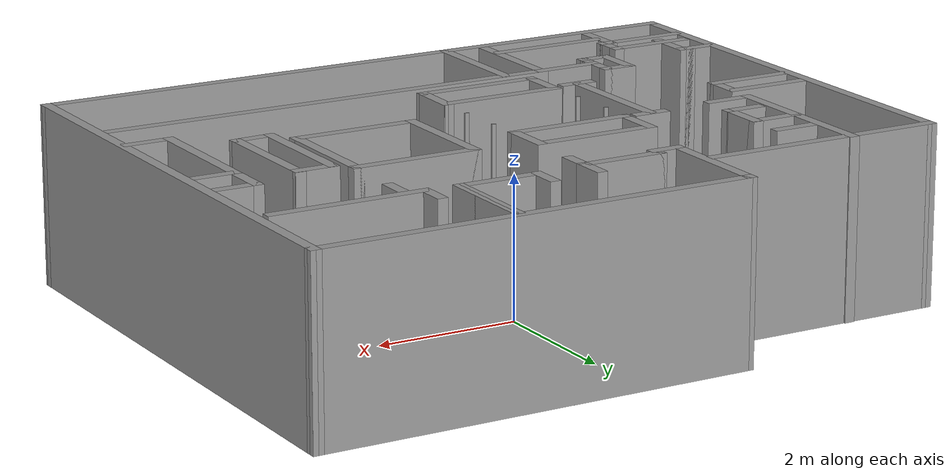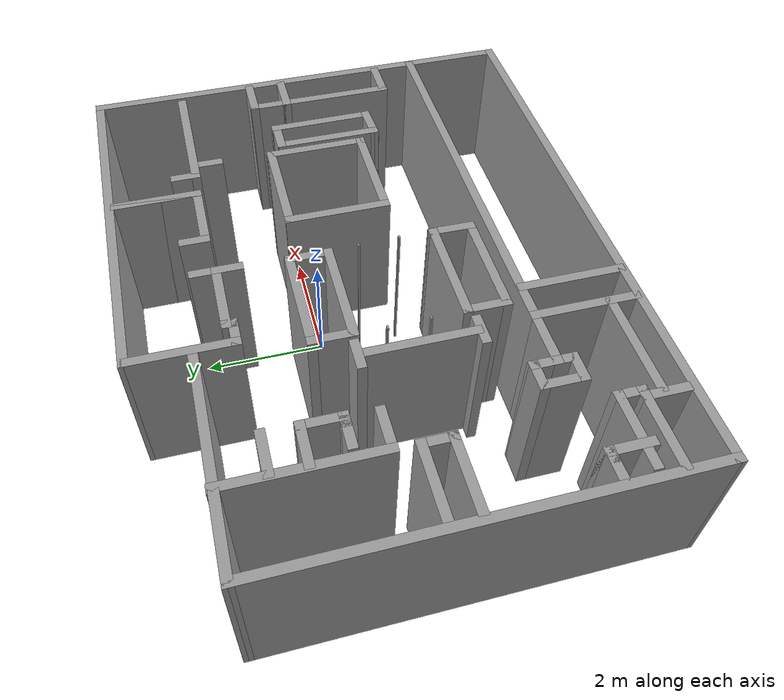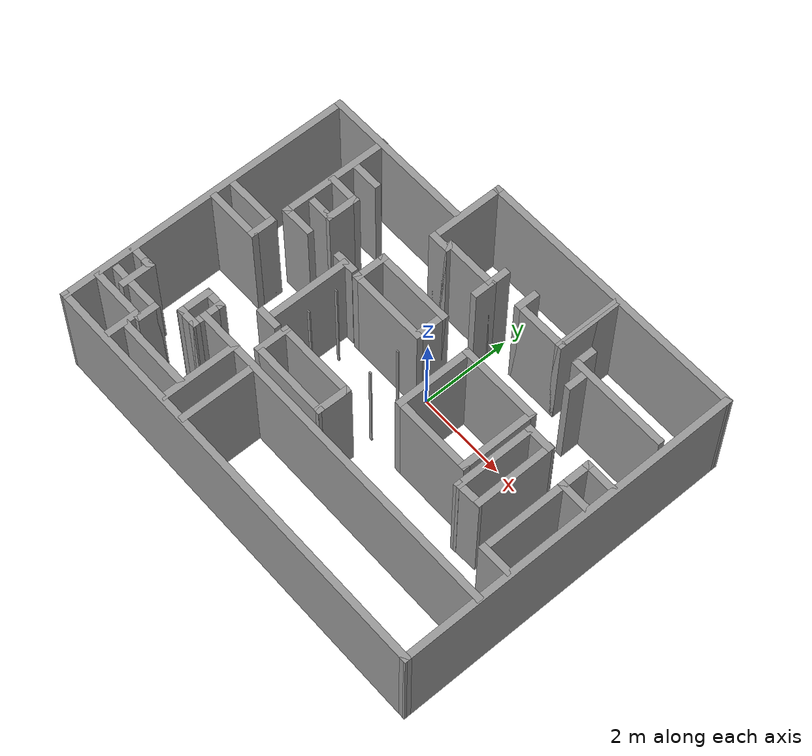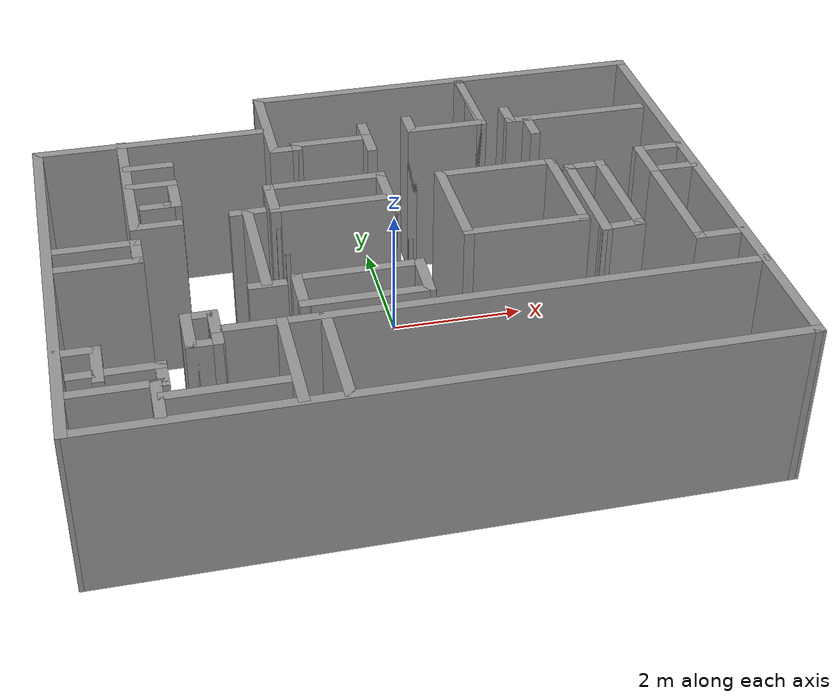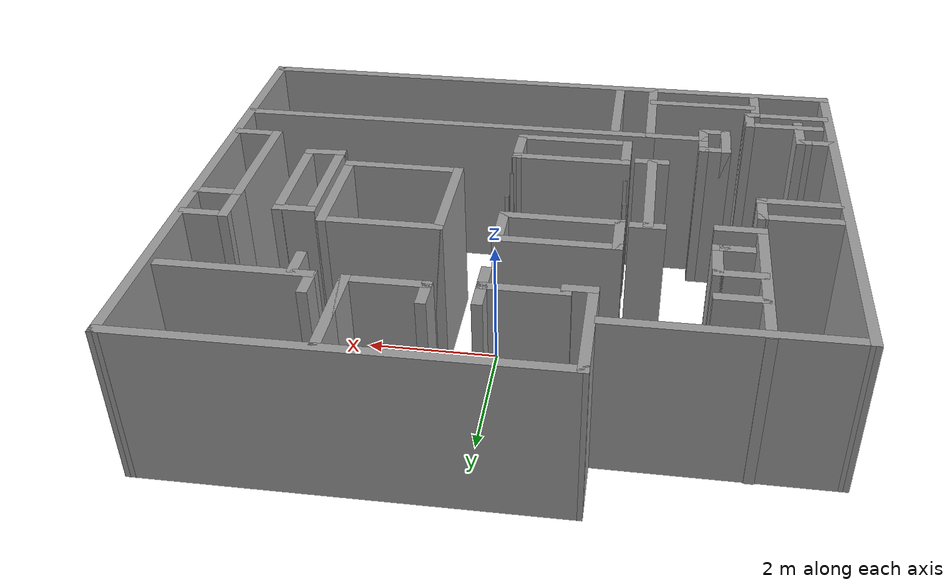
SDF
<?xml version='1.0'?>
<sdf version='1.6'>
  <model name='map'>
    <pose frame=''>-0.237865 -0.686556 0 0 -0 0</pose>
    <link name='Wall_100'>
      <collision name='Wall_100_Collision'>
        <geometry>
          <box>
            <size>0.75 0.15 2.5</size>
          </box>
        </geometry>
        <pose frame=''>0 0 1.25 0 -0 0</pose>
      </collision>
      <visual name='Wall_100_Visual'>
        <pose frame=''>0 0 1.25 0 -0 0</pose>
        <geometry>
          <box>
            <size>0.75 0.15 2.5</size>
          </box>
        </geometry>
        <material>
          <script>
            <uri>file://media/materials/scripts/gazebo.material</uri>
            <name>Gazebo/Grey</name>
          </script>
          <ambient>1 1 1 1</ambient>
        </material>
        <meta>
          <layer>0</layer>
        </meta>
      </visual>
      <pose frame=''>-4.23906 -2.52874 0 0 -0 -1.5708</pose>
    </link>
    <link name='Wall_108'>
      <collision name='Wall_108_Collision'>
        <geometry>
          <box>
            <size>0.5 0.15 2.5</size>
          </box>
        </geometry>
        <pose frame=''>0 0 1.25 0 -0 0</pose>
      </collision>
      <visual name='Wall_108_Visual'>
        <pose frame=''>0 0 1.25 0 -0 0</pose>
        <geometry>
          <box>
            <size>0.5 0.15 2.5</size>
          </box>
        </geometry>
        <material>
          <script>
            <uri>file://media/materials/scripts/gazebo.material</uri>
            <name>Gazebo/Grey</name>
          </script>
          <ambient>1 1 1 1</ambient>
        </material>
        <meta>
          <layer>0</layer>
        </meta>
      </visual>
      <pose frame=''>-3.15967 0.972526 0 0 -0 0</pose>
    </link>
    <link name='Wall_109'>
      <collision name='Wall_109_Collision'>
        <geometry>
          <box>
            <size>0.25 0.15 2.5</size>
          </box>
        </geometry>
        <pose frame=''>0 0 1.25 0 -0 0</pose>
      </collision>
      <visual name='Wall_109_Visual'>
        <pose frame=''>0 0 1.25 0 -0 0</pose>
        <geometry>
          <box>
            <size>0.25 0.15 2.5</size>
          </box>
        </geometry>
        <material>
          <script>
            <uri>file://media/materials/scripts/gazebo.material</uri>
            <name>Gazebo/Grey</name>
          </script>
          <ambient>1 1 1 1</ambient>
        </material>
        <meta>
          <layer>0</layer>
        </meta>
      </visual>
      <pose frame=''>-2.93467 0.972526 0 0 -0 0</pose>
    </link>
    <link name='Wall_110'>
      <collision name='Wall_110_Collision'>
        <geometry>
          <box>
            <size>0.75 0.15 2.5</size>
          </box>
        </geometry>
        <pose frame=''>0 0 1.25 0 -0 0</pose>
      </collision>
      <visual name='Wall_110_Visual'>
        <pose frame=''>0 0 1.25 0 -0 0</pose>
        <geometry>
          <box>
            <size>0.75 0.15 2.5</size>
          </box>
        </geometry>
        <material>
          <script>
            <uri>file://media/materials/scripts/gazebo.material</uri>
            <name>Gazebo/Grey</name>
          </script>
          <ambient>1 1 1 1</ambient>
        </material>
        <meta>
          <layer>0</layer>
        </meta>
      </visual>
      <pose frame=''>-2.88467 1.27253 0 0 -0 1.5708</pose>
    </link>
    <link name='Wall_111'>
      <collision name='Wall_111_Collision'>
        <geometry>
          <box>
            <size>0.75 0.15 2.5</size>
          </box>
        </geometry>
        <pose frame=''>0 0 1.25 0 -0 0</pose>
      </collision>
      <visual name='Wall_111_Visual'>
        <pose frame=''>0 0 1.25 0 -0 0</pose>
        <geometry>
          <box>
            <size>0.75 0.15 2.5</size>
          </box>
        </geometry>
        <material>
          <script>
            <uri>file://media/materials/scripts/gazebo.material</uri>
            <name>Gazebo/Grey</name>
          </script>
          <ambient>1 1 1 1</ambient>
        </material>
        <meta>
          <layer>0</layer>
        </meta>
      </visual>
      <pose frame=''>-3.18467 1.57253 0 0 -0 3.14159</pose>
    </link>
    <link name='Wall_115'>
      <collision name='Wall_115_Collision'>
        <geometry>
          <box>
            <size>0.5 0.15 2.5</size>
          </box>
        </geometry>
        <pose frame=''>0 0 1.25 0 -0 0</pose>
      </collision>
      <visual name='Wall_115_Visual'>
        <pose frame=''>0 0 1.25 0 -0 0</pose>
        <geometry>
          <box>
            <size>0.5 0.15 2.5</size>
          </box>
        </geometry>
        <material>
          <script>
            <uri>file://media/materials/scripts/gazebo.material</uri>
            <name>Gazebo/Grey</name>
          </script>
          <ambient>1 1 1 1</ambient>
        </material>
        <meta>
          <layer>0</layer>
        </meta>
      </visual>
      <pose frame=''>0.884147 2.51846 0 0 -0 1.5708</pose>
    </link>
    <link name='Wall_117'>
      <collision name='Wall_117_Collision'>
        <geometry>
          <box>
            <size>1.5 0.15 2.5</size>
          </box>
        </geometry>
        <pose frame=''>0 0 1.25 0 -0 0</pose>
      </collision>
      <visual name='Wall_117_Visual'>
        <pose frame=''>0 0 1.25 0 -0 0</pose>
        <geometry>
          <box>
            <size>1.5 0.15 2.5</size>
          </box>
        </geometry>
        <material>
          <script>
            <uri>file://media/materials/scripts/gazebo.material</uri>
            <name>Gazebo/Grey</name>
          </script>
          <ambient>1 1 1 1</ambient>
        </material>
        <meta>
          <layer>0</layer>
        </meta>
      </visual>
      <pose frame=''>1.98415 3.01846 0 0 -0 -1.5708</pose>
    </link>
    <link name='Wall_120'>
      <collision name='Wall_120_Collision'>
        <geometry>
          <box>
            <size>2.25 0.15 2.5</size>
          </box>
        </geometry>
        <pose frame=''>0 0 1.25 0 -0 0</pose>
      </collision>
      <visual name='Wall_120_Visual'>
        <pose frame=''>0 0 1.25 0 -0 0</pose>
        <geometry>
          <box>
            <size>2.25 0.15 2.5</size>
          </box>
        </geometry>
        <material>
          <script>
            <uri>file://media/materials/scripts/gazebo.material</uri>
            <name>Gazebo/Grey</name>
          </script>
          <ambient>1 1 1 1</ambient>
        </material>
        <meta>
          <layer>0</layer>
        </meta>
      </visual>
      <pose frame=''>3.50223 2.30932 0 0 -0 0</pose>
    </link>
    <link name='Wall_124'>
      <collision name='Wall_124_Collision'>
        <geometry>
          <box>
            <size>0.5 0.15 2.5</size>
          </box>
        </geometry>
        <pose frame=''>0 0 1.25 0 -0 0</pose>
      </collision>
      <visual name='Wall_124_Visual'>
        <pose frame=''>0 0 1.25 0 -0 0</pose>
        <geometry>
          <box>
            <size>0.5 0.15 2.5</size>
          </box>
        </geometry>
        <material>
          <script>
            <uri>file://media/materials/scripts/gazebo.material</uri>
            <name>Gazebo/Grey</name>
          </script>
          <ambient>1 1 1 1</ambient>
        </material>
        <meta>
          <layer>0</layer>
        </meta>
      </visual>
      <pose frame=''>2.71607 2.06217 0 0 -0 1.5708</pose>
    </link>
    <link name='Wall_126'>
      <collision name='Wall_126_Collision'>
        <geometry>
          <box>
            <size>0.75 0.15 2.5</size>
          </box>
        </geometry>
        <pose frame=''>0 0 1.25 0 -0 0</pose>
      </collision>
      <visual name='Wall_126_Visual'>
        <pose frame=''>0 0 1.25 0 -0 0</pose>
        <geometry>
          <box>
            <size>0.75 0.15 2.5</size>
          </box>
        </geometry>
        <material>
          <script>
            <uri>file://media/materials/scripts/gazebo.material</uri>
            <name>Gazebo/Grey</name>
          </script>
          <ambient>1 1 1 1</ambient>
        </material>
        <meta>
          <layer>0</layer>
        </meta>
      </visual>
      <pose frame=''>4.40367 1.02529 0 0 -0 3.14159</pose>
    </link>
    <link name='Wall_127'>
      <collision name='Wall_127_Collision'>
        <geometry>
          <box>
            <size>0.75 0.15 2.5</size>
          </box>
        </geometry>
        <pose frame=''>0 0 1.25 0 -0 0</pose>
      </collision>
      <visual name='Wall_127_Visual'>
        <pose frame=''>0 0 1.25 0 -0 0</pose>
        <geometry>
          <box>
            <size>0.75 0.15 2.5</size>
          </box>
        </geometry>
        <material>
          <script>
            <uri>file://media/materials/scripts/gazebo.material</uri>
            <name>Gazebo/Grey</name>
          </script>
          <ambient>1 1 1 1</ambient>
        </material>
        <meta>
          <layer>0</layer>
        </meta>
      </visual>
      <pose frame=''>4.10367 0.725294 0 0 -0 -1.5708</pose>
    </link>
    <link name='Wall_128'>
      <collision name='Wall_128_Collision'>
        <geometry>
          <box>
            <size>0.75 0.15 2.5</size>
          </box>
        </geometry>
        <pose frame=''>0 0 1.25 0 -0 0</pose>
      </collision>
      <visual name='Wall_128_Visual'>
        <pose frame=''>0 0 1.25 0 -0 0</pose>
        <geometry>
          <box>
            <size>0.75 0.15 2.5</size>
          </box>
        </geometry>
        <material>
          <script>
            <uri>file://media/materials/scripts/gazebo.material</uri>
            <name>Gazebo/Grey</name>
          </script>
          <ambient>1 1 1 1</ambient>
        </material>
        <meta>
          <layer>0</layer>
        </meta>
      </visual>
      <pose frame=''>4.40367 0.425294 0 0 -0 0</pose>
    </link>
    <link name='Wall_130'>
      <collision name='Wall_130_Collision'>
        <geometry>
          <box>
            <size>2 0.15 2.5</size>
          </box>
        </geometry>
        <pose frame=''>0 0 1.25 0 -0 0</pose>
      </collision>
      <visual name='Wall_130_Visual'>
        <pose frame=''>0 0 1.25 0 -0 0</pose>
        <geometry>
          <box>
            <size>2 0.15 2.5</size>
          </box>
        </geometry>
        <material>
          <script>
            <uri>file://media/materials/scripts/gazebo.material</uri>
            <name>Gazebo/Grey</name>
          </script>
          <ambient>1 1 1 1</ambient>
        </material>
        <meta>
          <layer>0</layer>
        </meta>
      </visual>
      <pose frame=''>4.10367 -0.499706 0 0 -0 -1.5708</pose>
    </link>
    <link name='Wall_131'>
      <collision name='Wall_131_Collision'>
        <geometry>
          <box>
            <size>0.75 0.15 2.5</size>
          </box>
        </geometry>
        <pose frame=''>0 0 1.25 0 -0 0</pose>
      </collision>
      <visual name='Wall_131_Visual'>
        <pose frame=''>0 0 1.25 0 -0 0</pose>
        <geometry>
          <box>
            <size>0.75 0.15 2.5</size>
          </box>
        </geometry>
        <material>
          <script>
            <uri>file://media/materials/scripts/gazebo.material</uri>
            <name>Gazebo/Grey</name>
          </script>
          <ambient>1 1 1 1</ambient>
        </material>
        <meta>
          <layer>0</layer>
        </meta>
      </visual>
      <pose frame=''>4.40367 -1.42471 0 0 -0 0</pose>
    </link>
    <link name='Wall_148'>
      <collision name='Wall_148_Collision'>
        <geometry>
          <box>
            <size>1.9 0.15 2.5</size>
          </box>
        </geometry>
        <pose frame=''>0 0 1.25 0 -0 0</pose>
      </collision>
      <visual name='Wall_148_Visual'>
        <pose frame=''>0 0 1.25 0 -0 0</pose>
        <geometry>
          <box>
            <size>1.9 0.15 2.5</size>
          </box>
        </geometry>
        <material>
          <script>
            <uri>file://media/materials/scripts/gazebo.material</uri>
            <name>Gazebo/Grey</name>
          </script>
          <ambient>1 1 1 1</ambient>
        </material>
        <meta>
          <layer>0</layer>
        </meta>
      </visual>
      <pose frame=''>-1.92478 -0.363959 0 0 -0 -1.5708</pose>
    </link>
    <link name='Wall_150'>
      <collision name='Wall_150_Collision'>
        <geometry>
          <box>
            <size>0.53 0.15 2.5</size>
          </box>
        </geometry>
        <pose frame=''>0 0 1.25 0 -0 0</pose>
      </collision>
      <visual name='Wall_150_Visual'>
        <pose frame=''>0 0 1.25 0 -0 0</pose>
        <geometry>
          <box>
            <size>0.53 0.15 2.5</size>
          </box>
        </geometry>
        <material>
          <script>
            <uri>file://media/materials/scripts/gazebo.material</uri>
            <name>Gazebo/Grey</name>
          </script>
          <ambient>1 1 1 1</ambient>
        </material>
        <meta>
          <layer>0</layer>
        </meta>
      </visual>
      <pose frame=''>-1.91983 0.545736 0 0 -0 0</pose>
    </link>
    <link name='Wall_152'>
      <collision name='Wall_152_Collision'>
        <geometry>
          <box>
            <size>0.53 0.15 2.5</size>
          </box>
        </geometry>
        <pose frame=''>0 0 1.25 0 -0 0</pose>
      </collision>
      <visual name='Wall_152_Visual'>
        <pose frame=''>0 0 1.25 0 -0 0</pose>
        <geometry>
          <box>
            <size>0.53 0.15 2.5</size>
          </box>
        </geometry>
        <material>
          <script>
            <uri>file://media/materials/scripts/gazebo.material</uri>
            <name>Gazebo/Grey</name>
          </script>
          <ambient>1 1 1 1</ambient>
        </material>
        <meta>
          <layer>0</layer>
        </meta>
      </visual>
      <pose frame=''>-1.91983 -1.29315 0 0 -0 0</pose>
    </link>
    <link name='Wall_154'>
      <collision name='Wall_154_Collision'>
        <geometry>
          <box>
            <size>1.81 0.15 2.5</size>
          </box>
        </geometry>
        <pose frame=''>0 0 1.25 0 -0 0</pose>
      </collision>
      <visual name='Wall_154_Visual'>
        <pose frame=''>0 0 1.25 0 -0 0</pose>
        <geometry>
          <box>
            <size>1.81 0.15 2.5</size>
          </box>
        </geometry>
        <material>
          <script>
            <uri>file://media/materials/scripts/gazebo.material</uri>
            <name>Gazebo/Grey</name>
          </script>
          <ambient>1 1 1 1</ambient>
        </material>
        <meta>
          <layer>0</layer>
        </meta>
      </visual>
      <pose frame=''>-0.701562 1.13557 0 0 -0 0</pose>
    </link>
    <link name='Wall_156'>
      <collision name='Wall_156_Collision'>
        <geometry>
          <box>
            <size>0.77 0.15 2.5</size>
          </box>
        </geometry>
        <pose frame=''>0 0 1.25 0 -0 0</pose>
      </collision>
      <visual name='Wall_156_Visual'>
        <pose frame=''>0 0 1.25 0 -0 0</pose>
        <geometry>
          <box>
            <size>0.77 0.15 2.5</size>
          </box>
        </geometry>
        <material>
          <script>
            <uri>file://media/materials/scripts/gazebo.material</uri>
            <name>Gazebo/Grey</name>
          </script>
          <ambient>1 1 1 1</ambient>
        </material>
        <meta>
          <layer>0</layer>
        </meta>
      </visual>
      <pose frame=''>-1.53156 0.825567 0 0 -0 -1.5708</pose>
    </link>
    <link name='Wall_158'>
      <collision name='Wall_158_Collision'>
        <geometry>
          <box>
            <size>0.77 0.15 2.5</size>
          </box>
        </geometry>
        <pose frame=''>0 0 1.25 0 -0 0</pose>
      </collision>
      <visual name='Wall_158_Visual'>
        <pose frame=''>0 0 1.25 0 -0 0</pose>
        <geometry>
          <box>
            <size>0.77 0.15 2.5</size>
          </box>
        </geometry>
        <material>
          <script>
            <uri>file://media/materials/scripts/gazebo.material</uri>
            <name>Gazebo/Grey</name>
          </script>
          <ambient>1 1 1 1</ambient>
        </material>
        <meta>
          <layer>0</layer>
        </meta>
      </visual>
      <pose frame=''>0.128438 0.825567 0 0 -0 -1.5708</pose>
    </link>
    <link name='Wall_160'>
      <collision name='Wall_160_Collision'>
        <geometry>
          <box>
            <size>1.81 0.15 2.5</size>
          </box>
        </geometry>
        <pose frame=''>0 0 1.25 0 -0 0</pose>
      </collision>
      <visual name='Wall_160_Visual'>
        <pose frame=''>0 0 1.25 0 -0 0</pose>
        <geometry>
          <box>
            <size>1.81 0.15 2.5</size>
          </box>
        </geometry>
        <material>
          <script>
            <uri>file://media/materials/scripts/gazebo.material</uri>
            <name>Gazebo/Grey</name>
          </script>
          <ambient>1 1 1 1</ambient>
        </material>
        <meta>
          <layer>0</layer>
        </meta>
      </visual>
      <pose frame=''>-0.701562 0.515567 0 0 -0 3.14159</pose>
    </link>
    <link name='Wall_163'>
      <collision name='Wall_163_Collision'>
        <geometry>
          <box>
            <size>0.770431 0.15 2.5</size>
          </box>
        </geometry>
        <pose frame=''>0 0 1.25 0 -0 0</pose>
      </collision>
      <visual name='Wall_163_Visual'>
        <pose frame=''>0 0 1.25 0 -0 0</pose>
        <geometry>
          <box>
            <size>0.770431 0.15 2.5</size>
          </box>
        </geometry>
        <material>
          <script>
            <uri>file://media/materials/scripts/gazebo.material</uri>
            <name>Gazebo/Grey</name>
          </script>
          <ambient>1 1 1 1</ambient>
        </material>
        <meta>
          <layer>0</layer>
        </meta>
      </visual>
      <pose frame=''>0.162755 -1.52219 0 0 -0 -1.58945</pose>
    </link>
    <link name='Wall_165'>
      <collision name='Wall_165_Collision'>
        <geometry>
          <box>
            <size>1.82157 0.15 2.5</size>
          </box>
        </geometry>
        <pose frame=''>0 0 1.25 0 -0 0</pose>
      </collision>
      <visual name='Wall_165_Visual'>
        <pose frame=''>0 0 1.25 0 -0 0</pose>
        <geometry>
          <box>
            <size>1.82157 0.15 2.5</size>
          </box>
        </geometry>
        <material>
          <script>
            <uri>file://media/materials/scripts/gazebo.material</uri>
            <name>Gazebo/Grey</name>
          </script>
          <ambient>1 1 1 1</ambient>
        </material>
        <meta>
          <layer>0</layer>
        </meta>
      </visual>
      <pose frame=''>-0.67881 -1.21219 0 0 -0 3.14159</pose>
    </link>
    <link name='Wall_167'>
      <collision name='Wall_167_Collision'>
        <geometry>
          <box>
            <size>0.77 0.15 2.5</size>
          </box>
        </geometry>
        <pose frame=''>0 0 1.25 0 -0 0</pose>
      </collision>
      <visual name='Wall_167_Visual'>
        <pose frame=''>0 0 1.25 0 -0 0</pose>
        <geometry>
          <box>
            <size>0.77 0.15 2.5</size>
          </box>
        </geometry>
        <material>
          <script>
            <uri>file://media/materials/scripts/gazebo.material</uri>
            <name>Gazebo/Grey</name>
          </script>
          <ambient>1 1 1 1</ambient>
        </material>
        <meta>
          <layer>0</layer>
        </meta>
      </visual>
      <pose frame=''>-1.51459 -1.52219 0 0 -0 -1.5708</pose>
    </link>
    <link name='Wall_169'>
      <collision name='Wall_169_Collision'>
        <geometry>
          <box>
            <size>1.82157 0.15 2.5</size>
          </box>
        </geometry>
        <pose frame=''>0 0 1.25 0 -0 0</pose>
      </collision>
      <visual name='Wall_169_Visual'>
        <pose frame=''>0 0 1.25 0 -0 0</pose>
        <geometry>
          <box>
            <size>1.82157 0.15 2.5</size>
          </box>
        </geometry>
        <material>
          <script>
            <uri>file://media/materials/scripts/gazebo.material</uri>
            <name>Gazebo/Grey</name>
          </script>
          <ambient>1 1 1 1</ambient>
        </material>
        <meta>
          <layer>0</layer>
        </meta>
      </visual>
      <pose frame=''>-0.67881 -1.83219 0 0 -0 0</pose>
    </link>
    <link name='Wall_171'>
      <collision name='Wall_171_Collision'>
        <geometry>
          <box>
            <size>0.06 0.03 2.5</size>
          </box>
        </geometry>
        <pose frame=''>0 0 1.25 0 -0 0</pose>
      </collision>
      <visual name='Wall_171_Visual'>
        <pose frame=''>0 0 1.25 0 -0 0</pose>
        <geometry>
          <box>
            <size>0.06 0.03 2.5</size>
          </box>
        </geometry>
        <material>
          <script>
            <uri>file://media/materials/scripts/gazebo.material</uri>
            <name>Gazebo/Grey</name>
          </script>
          <ambient>1 1 1 1</ambient>
        </material>
        <meta>
          <layer>0</layer>
        </meta>
      </visual>
      <pose frame=''>-1.56282 0.013732 0 0 -0 0</pose>
    </link>
    <link name='Wall_173'>
      <collision name='Wall_173_Collision'>
        <geometry>
          <box>
            <size>0.06 0.03 2.5</size>
          </box>
        </geometry>
        <pose frame=''>0 0 1.25 0 -0 0</pose>
      </collision>
      <visual name='Wall_173_Visual'>
        <pose frame=''>0 0 1.25 0 -0 0</pose>
        <geometry>
          <box>
            <size>0.06 0.03 2.5</size>
          </box>
        </geometry>
        <material>
          <script>
            <uri>file://media/materials/scripts/gazebo.material</uri>
            <name>Gazebo/Grey</name>
          </script>
          <ambient>1 1 1 1</ambient>
        </material>
        <meta>
          <layer>0</layer>
        </meta>
      </visual>
      <pose frame=''>-1.53969 -0.657055 0 0 -0 0</pose>
    </link>
    <link name='Wall_177'>
      <collision name='Wall_177_Collision'>
        <geometry>
          <box>
            <size>0.06 0.03 2.5</size>
          </box>
        </geometry>
        <pose frame=''>0 0 1.25 0 -0 0</pose>
      </collision>
      <visual name='Wall_177_Visual'>
        <pose frame=''>0 0 1.25 0 -0 0</pose>
        <geometry>
          <box>
            <size>0.06 0.03 2.5</size>
          </box>
        </geometry>
        <material>
          <script>
            <uri>file://media/materials/scripts/gazebo.material</uri>
            <name>Gazebo/Grey</name>
          </script>
          <ambient>1 1 1 1</ambient>
        </material>
        <meta>
          <layer>0</layer>
        </meta>
      </visual>
      <pose frame=''>0.175529 -0.648544 0 0 -0 0</pose>
    </link>
    <link name='Wall_179'>
      <collision name='Wall_179_Collision'>
        <geometry>
          <box>
            <size>0.06 0.03 2.5</size>
          </box>
        </geometry>
        <pose frame=''>0 0 1.25 0 -0 0</pose>
      </collision>
      <visual name='Wall_179_Visual'>
        <pose frame=''>0 0 1.25 0 -0 0</pose>
        <geometry>
          <box>
            <size>0.06 0.03 2.5</size>
          </box>
        </geometry>
        <material>
          <script>
            <uri>file://media/materials/scripts/gazebo.material</uri>
            <name>Gazebo/Grey</name>
          </script>
          <ambient>1 1 1 1</ambient>
        </material>
        <meta>
          <layer>0</layer>
        </meta>
      </visual>
      <pose frame=''>0.156789 0.018667 0 0 -0 0</pose>
    </link>
    <link name='Wall_181'>
      <collision name='Wall_181_Collision'>
        <geometry>
          <box>
            <size>1.75 0.15 2.5</size>
          </box>
        </geometry>
        <pose frame=''>0 0 1.25 0 -0 0</pose>
      </collision>
      <visual name='Wall_181_Visual'>
        <pose frame=''>0 0 1.25 0 -0 0</pose>
        <geometry>
          <box>
            <size>1.75 0.15 2.5</size>
          </box>
        </geometry>
        <material>
          <script>
            <uri>file://media/materials/scripts/gazebo.material</uri>
            <name>Gazebo/Grey</name>
          </script>
          <ambient>1 1 1 1</ambient>
        </material>
        <meta>
          <layer>0</layer>
        </meta>
      </visual>
      <pose frame=''>0.997341 0.163694 0 0 -0 -1.5708</pose>
    </link>
    <link name='Wall_183'>
      <collision name='Wall_183_Collision'>
        <geometry>
          <box>
            <size>1.75 0.15 2.5</size>
          </box>
        </geometry>
        <pose frame=''>0 0 1.25 0 -0 0</pose>
      </collision>
      <visual name='Wall_183_Visual'>
        <pose frame=''>0 0 1.25 0 -0 0</pose>
        <geometry>
          <box>
            <size>1.75 0.15 2.5</size>
          </box>
        </geometry>
        <material>
          <script>
            <uri>file://media/materials/scripts/gazebo.material</uri>
            <name>Gazebo/Grey</name>
          </script>
          <ambient>1 1 1 1</ambient>
        </material>
        <meta>
          <layer>0</layer>
        </meta>
      </visual>
      <pose frame=''>2.68587 0.163694 0 0 -0 -1.5708</pose>
    </link>
    <link name='Wall_185'>
      <collision name='Wall_185_Collision'>
        <geometry>
          <box>
            <size>1.83853 0.15 2.5</size>
          </box>
        </geometry>
        <pose frame=''>0 0 1.25 0 -0 0</pose>
      </collision>
      <visual name='Wall_185_Visual'>
        <pose frame=''>0 0 1.25 0 -0 0</pose>
        <geometry>
          <box>
            <size>1.83853 0.15 2.5</size>
          </box>
        </geometry>
        <material>
          <script>
            <uri>file://media/materials/scripts/gazebo.material</uri>
            <name>Gazebo/Grey</name>
          </script>
          <ambient>1 1 1 1</ambient>
        </material>
        <meta>
          <layer>0</layer>
        </meta>
      </visual>
      <pose frame=''>1.84161 0.963694 0 0 -0 0</pose>
    </link>
    <link name='Wall_187'>
      <collision name='Wall_187_Collision'>
        <geometry>
          <box>
            <size>1.83853 0.15 2.5</size>
          </box>
        </geometry>
        <pose frame=''>0 0 1.25 0 -0 0</pose>
      </collision>
      <visual name='Wall_187_Visual'>
        <pose frame=''>0 0 1.25 0 -0 0</pose>
        <geometry>
          <box>
            <size>1.83853 0.15 2.5</size>
          </box>
        </geometry>
        <material>
          <script>
            <uri>file://media/materials/scripts/gazebo.material</uri>
            <name>Gazebo/Grey</name>
          </script>
          <ambient>1 1 1 1</ambient>
        </material>
        <meta>
          <layer>0</layer>
        </meta>
      </visual>
      <pose frame=''>1.84161 -0.636306 0 0 -0 3.14159</pose>
    </link>
    <link name='Wall_190'>
      <collision name='Wall_190_Collision'>
        <geometry>
          <box>
            <size>1.81 0.15 2.5</size>
          </box>
        </geometry>
        <pose frame=''>0 0 1.25 0 -0 0</pose>
      </collision>
      <visual name='Wall_190_Visual'>
        <pose frame=''>0 0 1.25 0 -0 0</pose>
        <geometry>
          <box>
            <size>1.81 0.15 2.5</size>
          </box>
        </geometry>
        <material>
          <script>
            <uri>file://media/materials/scripts/gazebo.material</uri>
            <name>Gazebo/Grey</name>
          </script>
          <ambient>1 1 1 1</ambient>
        </material>
        <meta>
          <layer>0</layer>
        </meta>
      </visual>
      <pose frame=''>3.39695 -0.074463 0 0 -0 -1.56406</pose>
    </link>
    <link name='Wall_192'>
      <collision name='Wall_192_Collision'>
        <geometry>
          <box>
            <size>0.643285 0.15 2.5</size>
          </box>
        </geometry>
        <pose frame=''>0 0 1.25 0 -0 0</pose>
      </collision>
      <visual name='Wall_192_Visual'>
        <pose frame=''>0 0 1.25 0 -0 0</pose>
        <geometry>
          <box>
            <size>0.643285 0.15 2.5</size>
          </box>
        </geometry>
        <material>
          <script>
            <uri>file://media/materials/scripts/gazebo.material</uri>
            <name>Gazebo/Grey</name>
          </script>
          <ambient>1 1 1 1</ambient>
        </material>
        <meta>
          <layer>0</layer>
        </meta>
      </visual>
      <pose frame=''>3.15616 -0.927593 0 0 -0 -3.09461</pose>
    </link>
    <link name='Wall_194'>
      <collision name='Wall_194_Collision'>
        <geometry>
          <box>
            <size>1.82157 0.15 2.5</size>
          </box>
        </geometry>
        <pose frame=''>0 0 1.25 0 -0 0</pose>
      </collision>
      <visual name='Wall_194_Visual'>
        <pose frame=''>0 0 1.25 0 -0 0</pose>
        <geometry>
          <box>
            <size>1.82157 0.15 2.5</size>
          </box>
        </geometry>
        <material>
          <script>
            <uri>file://media/materials/scripts/gazebo.material</uri>
            <name>Gazebo/Grey</name>
          </script>
          <ambient>1 1 1 1</ambient>
        </material>
        <meta>
          <layer>0</layer>
        </meta>
      </visual>
      <pose frame=''>2.90979 -0.103395 0 0 -0 1.5708</pose>
    </link>
    <link name='Wall_196'>
      <collision name='Wall_196_Collision'>
        <geometry>
          <box>
            <size>0.631565 0.15 2.5</size>
          </box>
        </geometry>
        <pose frame=''>0 0 1.25 0 -0 0</pose>
      </collision>
      <visual name='Wall_196_Visual'>
        <pose frame=''>0 0 1.25 0 -0 0</pose>
        <geometry>
          <box>
            <size>0.631565 0.15 2.5</size>
          </box>
        </geometry>
        <material>
          <script>
            <uri>file://media/materials/scripts/gazebo.material</uri>
            <name>Gazebo/Grey</name>
          </script>
          <ambient>1 1 1 1</ambient>
        </material>
        <meta>
          <layer>0</layer>
        </meta>
      </visual>
      <pose frame=''>3.15058 0.743953 0 0 -0 0</pose>
    </link>
    <link name='Wall_198'>
      <collision name='Wall_198_Collision'>
        <geometry>
          <box>
            <size>0.5 0.15 2.5</size>
          </box>
        </geometry>
        <pose frame=''>0 0 1.25 0 -0 0</pose>
      </collision>
      <visual name='Wall_198_Visual'>
        <pose frame=''>0 0 1.25 0 -0 0</pose>
        <geometry>
          <box>
            <size>0.5 0.15 2.5</size>
          </box>
        </geometry>
        <material>
          <script>
            <uri>file://media/materials/scripts/gazebo.material</uri>
            <name>Gazebo/Grey</name>
          </script>
          <ambient>1 1 1 1</ambient>
        </material>
        <meta>
          <layer>0</layer>
        </meta>
      </visual>
      <pose frame=''>2.45223 2.48432 0 0 -0 1.5708</pose>
    </link>
    <link name='Wall_200'>
      <collision name='Wall_200_Collision'>
        <geometry>
          <box>
            <size>1 0.15 2.5</size>
          </box>
        </geometry>
        <pose frame=''>0 0 1.25 0 -0 0</pose>
      </collision>
      <visual name='Wall_200_Visual'>
        <pose frame=''>0 0 1.25 0 -0 0</pose>
        <geometry>
          <box>
            <size>1 0.15 2.5</size>
          </box>
        </geometry>
        <material>
          <script>
            <uri>file://media/materials/scripts/gazebo.material</uri>
            <name>Gazebo/Grey</name>
          </script>
          <ambient>1 1 1 1</ambient>
        </material>
        <meta>
          <layer>0</layer>
        </meta>
      </visual>
      <pose frame=''>-2.28615 -2.14079 0 0 -0 3.14159</pose>
    </link>
    <link name='Wall_202'>
      <collision name='Wall_202_Collision'>
        <geometry>
          <box>
            <size>0.5 0.15 2.5</size>
          </box>
        </geometry>
        <pose frame=''>0 0 1.25 0 -0 0</pose>
      </collision>
      <visual name='Wall_202_Visual'>
        <pose frame=''>0 0 1.25 0 -0 0</pose>
        <geometry>
          <box>
            <size>0.5 0.15 2.5</size>
          </box>
        </geometry>
        <material>
          <script>
            <uri>file://media/materials/scripts/gazebo.material</uri>
            <name>Gazebo/Grey</name>
          </script>
          <ambient>1 1 1 1</ambient>
        </material>
        <meta>
          <layer>0</layer>
        </meta>
      </visual>
      <pose frame=''>-2.71115 -1.96579 0 0 -0 1.5708</pose>
    </link>
    <link name='Wall_203'>
      <collision name='Wall_203_Collision'>
        <geometry>
          <box>
            <size>0.5 0.15 2.5</size>
          </box>
        </geometry>
        <pose frame=''>0 0 1.25 0 -0 0</pose>
      </collision>
      <visual name='Wall_203_Visual'>
        <pose frame=''>0 0 1.25 0 -0 0</pose>
        <geometry>
          <box>
            <size>0.5 0.15 2.5</size>
          </box>
        </geometry>
        <material>
          <script>
            <uri>file://media/materials/scripts/gazebo.material</uri>
            <name>Gazebo/Grey</name>
          </script>
          <ambient>1 1 1 1</ambient>
        </material>
        <meta>
          <layer>0</layer>
        </meta>
      </visual>
      <pose frame=''>-2.88615 -1.79079 0 0 -0 3.14159</pose>
    </link>
    <link name='Wall_204'>
      <collision name='Wall_204_Collision'>
        <geometry>
          <box>
            <size>0.75 0.15 2.5</size>
          </box>
        </geometry>
        <pose frame=''>0 0 1.25 0 -0 0</pose>
      </collision>
      <visual name='Wall_204_Visual'>
        <pose frame=''>0 0 1.25 0 -0 0</pose>
        <geometry>
          <box>
            <size>0.75 0.15 2.5</size>
          </box>
        </geometry>
        <material>
          <script>
            <uri>file://media/materials/scripts/gazebo.material</uri>
            <name>Gazebo/Grey</name>
          </script>
          <ambient>1 1 1 1</ambient>
        </material>
        <meta>
          <layer>0</layer>
        </meta>
      </visual>
      <pose frame=''>-3.06115 -2.09079 0 0 -0 -1.5708</pose>
    </link>
    <link name='Wall_205'>
      <collision name='Wall_205_Collision'>
        <geometry>
          <box>
            <size>0.5 0.15 2.5</size>
          </box>
        </geometry>
        <pose frame=''>0 0 1.25 0 -0 0</pose>
      </collision>
      <visual name='Wall_205_Visual'>
        <pose frame=''>0 0 1.25 0 -0 0</pose>
        <geometry>
          <box>
            <size>0.5 0.15 2.5</size>
          </box>
        </geometry>
        <material>
          <script>
            <uri>file://media/materials/scripts/gazebo.material</uri>
            <name>Gazebo/Grey</name>
          </script>
          <ambient>1 1 1 1</ambient>
        </material>
        <meta>
          <layer>0</layer>
        </meta>
      </visual>
      <pose frame=''>-2.88615 -2.39079 0 0 -0 0</pose>
    </link>
    <link name='Wall_206'>
      <collision name='Wall_206_Collision'>
        <geometry>
          <box>
            <size>0.4 0.15 2.5</size>
          </box>
        </geometry>
        <pose frame=''>0 0 1.25 0 -0 0</pose>
      </collision>
      <visual name='Wall_206_Visual'>
        <pose frame=''>0 0 1.25 0 -0 0</pose>
        <geometry>
          <box>
            <size>0.4 0.15 2.5</size>
          </box>
        </geometry>
        <material>
          <script>
            <uri>file://media/materials/scripts/gazebo.material</uri>
            <name>Gazebo/Grey</name>
          </script>
          <ambient>1 1 1 1</ambient>
        </material>
        <meta>
          <layer>0</layer>
        </meta>
      </visual>
      <pose frame=''>-2.71115 -2.26579 0 0 -0 1.5708</pose>
    </link>
    <link name='Wall_46'>
      <collision name='Wall_46_Collision'>
        <geometry>
          <box>
            <size>6.75 0.15 2.5</size>
          </box>
        </geometry>
        <pose frame=''>0 0 1.25 0 -0 0</pose>
      </collision>
      <visual name='Wall_46_Visual'>
        <pose frame=''>0 0 1.25 0 -0 0</pose>
        <geometry>
          <box>
            <size>6.75 0.15 2.5</size>
          </box>
        </geometry>
        <material>
          <script>
            <uri>file://media/materials/scripts/gazebo.material</uri>
            <name>Gazebo/Grey</name>
          </script>
          <ambient>1 1 1 1</ambient>
        </material>
        <meta>
          <layer>0</layer>
        </meta>
      </visual>
      <pose frame=''>-4.75022 -0.493903 0 0 -0 -1.56547</pose>
    </link>
    <link name='Wall_49'>
      <collision name='Wall_49_Collision'>
        <geometry>
          <box>
            <size>3.5 0.15 2.5</size>
          </box>
        </geometry>
        <pose frame=''>0 0 1.25 0 -0 0</pose>
      </collision>
      <visual name='Wall_49_Visual'>
        <pose frame=''>0 0 1.25 0 -0 0</pose>
        <geometry>
          <box>
            <size>3.5 0.15 2.5</size>
          </box>
        </geometry>
        <material>
          <script>
            <uri>file://media/materials/scripts/gazebo.material</uri>
            <name>Gazebo/Grey</name>
          </script>
          <ambient>1 1 1 1</ambient>
        </material>
        <meta>
          <layer>0</layer>
        </meta>
      </visual>
      <pose frame=''>-3.09281 2.8061 0 0 -0 0</pose>
    </link>
    <link name='Wall_51'>
      <collision name='Wall_51_Collision'>
        <geometry>
          <box>
            <size>1.75 0.15 2.5</size>
          </box>
        </geometry>
        <pose frame=''>0 0 1.25 0 -0 0</pose>
      </collision>
      <visual name='Wall_51_Visual'>
        <pose frame=''>0 0 1.25 0 -0 0</pose>
        <geometry>
          <box>
            <size>1.75 0.15 2.5</size>
          </box>
        </geometry>
        <material>
          <script>
            <uri>file://media/materials/scripts/gazebo.material</uri>
            <name>Gazebo/Grey</name>
          </script>
          <ambient>1 1 1 1</ambient>
        </material>
        <meta>
          <layer>0</layer>
        </meta>
      </visual>
      <pose frame=''>-1.28511 2.97351 0 0 -0 -1.5708</pose>
    </link>
    <link name='Wall_52'>
      <collision name='Wall_52_Collision'>
        <geometry>
          <box>
            <size>0.5 0.15 2.5</size>
          </box>
        </geometry>
        <pose frame=''>0 0 1.25 0 -0 0</pose>
      </collision>
      <visual name='Wall_52_Visual'>
        <pose frame=''>0 0 1.25 0 -0 0</pose>
        <geometry>
          <box>
            <size>0.5 0.15 2.5</size>
          </box>
        </geometry>
        <material>
          <script>
            <uri>file://media/materials/scripts/gazebo.material</uri>
            <name>Gazebo/Grey</name>
          </script>
          <ambient>1 1 1 1</ambient>
        </material>
        <meta>
          <layer>0</layer>
        </meta>
      </visual>
      <pose frame=''>-1.11011 2.17351 0 0 -0 0</pose>
    </link>
    <link name='Wall_53'>
      <collision name='Wall_53_Collision'>
        <geometry>
          <box>
            <size>0.25 0.15 2.5</size>
          </box>
        </geometry>
        <pose frame=''>0 0 1.25 0 -0 0</pose>
      </collision>
      <visual name='Wall_53_Visual'>
        <pose frame=''>0 0 1.25 0 -0 0</pose>
        <geometry>
          <box>
            <size>0.25 0.15 2.5</size>
          </box>
        </geometry>
        <material>
          <script>
            <uri>file://media/materials/scripts/gazebo.material</uri>
            <name>Gazebo/Grey</name>
          </script>
          <ambient>1 1 1 1</ambient>
        </material>
        <meta>
          <layer>0</layer>
        </meta>
      </visual>
      <pose frame=''>-0.935113 2.22351 0 0 -0 1.5708</pose>
    </link>
    <link name='Wall_54'>
      <collision name='Wall_54_Collision'>
        <geometry>
          <box>
            <size>1.25 0.15 2.5</size>
          </box>
        </geometry>
        <pose frame=''>0 0 1.25 0 -0 0</pose>
      </collision>
      <visual name='Wall_54_Visual'>
        <pose frame=''>0 0 1.25 0 -0 0</pose>
        <geometry>
          <box>
            <size>1.25 0.15 2.5</size>
          </box>
        </geometry>
        <material>
          <script>
            <uri>file://media/materials/scripts/gazebo.material</uri>
            <name>Gazebo/Grey</name>
          </script>
          <ambient>1 1 1 1</ambient>
        </material>
        <meta>
          <layer>0</layer>
        </meta>
      </visual>
      <pose frame=''>-0.385113 2.27351 0 0 -0 0</pose>
    </link>
    <link name='Wall_55'>
      <collision name='Wall_55_Collision'>
        <geometry>
          <box>
            <size>0.5 0.15 2.5</size>
          </box>
        </geometry>
        <pose frame=''>0 0 1.25 0 -0 0</pose>
      </collision>
      <visual name='Wall_55_Visual'>
        <pose frame=''>0 0 1.25 0 -0 0</pose>
        <geometry>
          <box>
            <size>0.5 0.15 2.5</size>
          </box>
        </geometry>
        <material>
          <script>
            <uri>file://media/materials/scripts/gazebo.material</uri>
            <name>Gazebo/Grey</name>
          </script>
          <ambient>1 1 1 1</ambient>
        </material>
        <meta>
          <layer>0</layer>
        </meta>
      </visual>
      <pose frame=''>0.164887 2.09851 0 0 -0 -1.5708</pose>
    </link>
    <link name='Wall_57'>
      <collision name='Wall_57_Collision'>
        <geometry>
          <box>
            <size>0.5 0.15 2.5</size>
          </box>
        </geometry>
        <pose frame=''>0 0 1.25 0 -0 0</pose>
      </collision>
      <visual name='Wall_57_Visual'>
        <pose frame=''>0 0 1.25 0 -0 0</pose>
        <geometry>
          <box>
            <size>0.5 0.15 2.5</size>
          </box>
        </geometry>
        <material>
          <script>
            <uri>file://media/materials/scripts/gazebo.material</uri>
            <name>Gazebo/Grey</name>
          </script>
          <ambient>1 1 1 1</ambient>
        </material>
        <meta>
          <layer>0</layer>
        </meta>
      </visual>
      <pose frame=''>0.164887 2.44851 0 0 -0 1.5708</pose>
    </link>
    <link name='Wall_60'>
      <collision name='Wall_60_Collision'>
        <geometry>
          <box>
            <size>2.5 0.15 2.5</size>
          </box>
        </geometry>
        <pose frame=''>0 0 1.25 0 -0 0</pose>
      </collision>
      <visual name='Wall_60_Visual'>
        <pose frame=''>0 0 1.25 0 -0 0</pose>
        <geometry>
          <box>
            <size>2.5 0.15 2.5</size>
          </box>
        </geometry>
        <material>
          <script>
            <uri>file://media/materials/scripts/gazebo.material</uri>
            <name>Gazebo/Grey</name>
          </script>
          <ambient>1 1 1 1</ambient>
        </material>
        <meta>
          <layer>0</layer>
        </meta>
      </visual>
      <pose frame=''>-3.51897 1.64869 0 0 -0 -1.5708</pose>
    </link>
    <link name='Wall_61'>
      <collision name='Wall_61_Collision'>
        <geometry>
          <box>
            <size>0.75 0.15 2.5</size>
          </box>
        </geometry>
        <pose frame=''>0 0 1.25 0 -0 0</pose>
      </collision>
      <visual name='Wall_61_Visual'>
        <pose frame=''>0 0 1.25 0 -0 0</pose>
        <geometry>
          <box>
            <size>0.75 0.15 2.5</size>
          </box>
        </geometry>
        <material>
          <script>
            <uri>file://media/materials/scripts/gazebo.material</uri>
            <name>Gazebo/Grey</name>
          </script>
          <ambient>1 1 1 1</ambient>
        </material>
        <meta>
          <layer>0</layer>
        </meta>
      </visual>
      <pose frame=''>-3.21896 0.473686 0 0 -0 0</pose>
    </link>
    <link name='Wall_63'>
      <collision name='Wall_63_Collision'>
        <geometry>
          <box>
            <size>0.75 0.15 2.5</size>
          </box>
        </geometry>
        <pose frame=''>0 0 1.25 0 -0 0</pose>
      </collision>
      <visual name='Wall_63_Visual'>
        <pose frame=''>0 0 1.25 0 -0 0</pose>
        <geometry>
          <box>
            <size>0.75 0.15 2.5</size>
          </box>
        </geometry>
        <material>
          <script>
            <uri>file://media/materials/scripts/gazebo.material</uri>
            <name>Gazebo/Grey</name>
          </script>
          <ambient>1 1 1 1</ambient>
        </material>
        <meta>
          <layer>0</layer>
        </meta>
      </visual>
      <pose frame=''>-3.18575 2.10252 0 0 -0 3.14159</pose>
    </link>
    <link name='Wall_65'>
      <collision name='Wall_65_Collision'>
        <geometry>
          <box>
            <size>1.22 0.15 2.5</size>
          </box>
        </geometry>
        <pose frame=''>0 0 1.25 0 -0 0</pose>
      </collision>
      <visual name='Wall_65_Visual'>
        <pose frame=''>0 0 1.25 0 -0 0</pose>
        <geometry>
          <box>
            <size>1.22 0.15 2.5</size>
          </box>
        </geometry>
        <material>
          <script>
            <uri>file://media/materials/scripts/gazebo.material</uri>
            <name>Gazebo/Grey</name>
          </script>
          <ambient>1 1 1 1</ambient>
        </material>
        <meta>
          <layer>0</layer>
        </meta>
      </visual>
      <pose frame=''>-4.07451 0.097332 0 0 -0 0</pose>
    </link>
    <link name='Wall_68'>
      <collision name='Wall_68_Collision'>
        <geometry>
          <box>
            <size>0.6 0.15 2.5</size>
          </box>
        </geometry>
        <pose frame=''>0 0 1.25 0 -0 0</pose>
      </collision>
      <visual name='Wall_68_Visual'>
        <pose frame=''>0 0 1.25 0 -0 0</pose>
        <geometry>
          <box>
            <size>0.6 0.15 2.5</size>
          </box>
        </geometry>
        <material>
          <script>
            <uri>file://media/materials/scripts/gazebo.material</uri>
            <name>Gazebo/Grey</name>
          </script>
          <ambient>1 1 1 1</ambient>
        </material>
        <meta>
          <layer>0</layer>
        </meta>
      </visual>
      <pose frame=''>-3.53951 -0.127668 0 0 -0 -1.5708</pose>
    </link>
    <link name='Wall_69'>
      <collision name='Wall_69_Collision'>
        <geometry>
          <box>
            <size>0.15 0.15 2.5</size>
          </box>
        </geometry>
        <pose frame=''>0 0 1.25 0 -0 0</pose>
      </collision>
      <visual name='Wall_69_Visual'>
        <pose frame=''>0 0 1.25 0 -0 0</pose>
        <geometry>
          <box>
            <size>0.15 0.15 2.5</size>
          </box>
        </geometry>
        <material>
          <script>
            <uri>file://media/materials/scripts/gazebo.material</uri>
            <name>Gazebo/Grey</name>
          </script>
          <ambient>1 1 1 1</ambient>
        </material>
        <meta>
          <layer>0</layer>
        </meta>
      </visual>
      <pose frame=''>-3.53951 -0.352668 0 0 -0 0</pose>
    </link>
    <link name='Wall_71'>
      <collision name='Wall_71_Collision'>
        <geometry>
          <box>
            <size>1.25 0.15 2.5</size>
          </box>
        </geometry>
        <pose frame=''>0 0 1.25 0 -0 0</pose>
      </collision>
      <visual name='Wall_71_Visual'>
        <pose frame=''>0 0 1.25 0 -0 0</pose>
        <geometry>
          <box>
            <size>1.25 0.15 2.5</size>
          </box>
        </geometry>
        <material>
          <script>
            <uri>file://media/materials/scripts/gazebo.material</uri>
            <name>Gazebo/Grey</name>
          </script>
          <ambient>1 1 1 1</ambient>
        </material>
        <meta>
          <layer>0</layer>
        </meta>
      </visual>
      <pose frame=''>-4.08951 -0.352668 0 0 -0 3.14159</pose>
    </link>
    <link name='Wall_73'>
      <collision name='Wall_73_Collision'>
        <geometry>
          <box>
            <size>1.25 0.15 2.5</size>
          </box>
        </geometry>
        <pose frame=''>0 0 1.25 0 -0 0</pose>
      </collision>
      <visual name='Wall_73_Visual'>
        <pose frame=''>0 0 1.25 0 -0 0</pose>
        <geometry>
          <box>
            <size>1.25 0.15 2.5</size>
          </box>
        </geometry>
        <material>
          <script>
            <uri>file://media/materials/scripts/gazebo.material</uri>
            <name>Gazebo/Grey</name>
          </script>
          <ambient>1 1 1 1</ambient>
        </material>
        <meta>
          <layer>0</layer>
        </meta>
      </visual>
      <pose frame=''>1.43415 2.34346 0 0 -0 0</pose>
    </link>
    <link name='Wall_74'>
      <collision name='Wall_74_Collision'>
        <geometry>
          <box>
            <size>1.5 0.15 2.5</size>
          </box>
        </geometry>
        <pose frame=''>0 0 1.25 0 -0 0</pose>
      </collision>
      <visual name='Wall_74_Visual'>
        <pose frame=''>0 0 1.25 0 -0 0</pose>
        <geometry>
          <box>
            <size>1.5 0.15 2.5</size>
          </box>
        </geometry>
        <material>
          <script>
            <uri>file://media/materials/scripts/gazebo.material</uri>
            <name>Gazebo/Grey</name>
          </script>
          <ambient>1 1 1 1</ambient>
        </material>
        <meta>
          <layer>0</layer>
        </meta>
      </visual>
      <pose frame=''>1.98415 3.01846 0 0 -0 1.5708</pose>
    </link>
    <link name='Wall_76'>
      <collision name='Wall_76_Collision'>
        <geometry>
          <box>
            <size>6.20305 0.15 2.5</size>
          </box>
        </geometry>
        <pose frame=''>0 0 1.25 0 -0 0</pose>
      </collision>
      <visual name='Wall_76_Visual'>
        <pose frame=''>0 0 1.25 0 -0 0</pose>
        <geometry>
          <box>
            <size>6.20305 0.15 2.5</size>
          </box>
        </geometry>
        <material>
          <script>
            <uri>file://media/materials/scripts/gazebo.material</uri>
            <name>Gazebo/Grey</name>
          </script>
          <ambient>1 1 1 1</ambient>
        </material>
        <meta>
          <layer>0</layer>
        </meta>
      </visual>
      <pose frame=''>1.74138 3.78669 0 0 -0 -3.13724</pose>
    </link>
    <link name='Wall_78'>
      <collision name='Wall_78_Collision'>
        <geometry>
          <box>
            <size>7.75 0.15 2.5</size>
          </box>
        </geometry>
        <pose frame=''>0 0 1.25 0 -0 0</pose>
      </collision>
      <visual name='Wall_78_Visual'>
        <pose frame=''>0 0 1.25 0 -0 0</pose>
        <geometry>
          <box>
            <size>7.75 0.15 2.5</size>
          </box>
        </geometry>
        <material>
          <script>
            <uri>file://media/materials/scripts/gazebo.material</uri>
            <name>Gazebo/Grey</name>
          </script>
          <ambient>1 1 1 1</ambient>
        </material>
        <meta>
          <layer>0</layer>
        </meta>
      </visual>
      <pose frame=''>4.76788 -0.000138 0 0 -0 -1.5708</pose>
    </link>
    <link name='Wall_79'>
      <collision name='Wall_79_Collision'>
        <geometry>
          <box>
            <size>9.65052 0.15 2.5</size>
          </box>
        </geometry>
        <pose frame=''>0 0 1.25 0 -0 0</pose>
      </collision>
      <visual name='Wall_79_Visual'>
        <pose frame=''>0 0 1.25 0 -0 0</pose>
        <geometry>
          <box>
            <size>9.65052 0.15 2.5</size>
          </box>
        </geometry>
        <material>
          <script>
            <uri>file://media/materials/scripts/gazebo.material</uri>
            <name>Gazebo/Grey</name>
          </script>
          <ambient>1 1 1 1</ambient>
        </material>
        <meta>
          <layer>0</layer>
        </meta>
      </visual>
      <pose frame=''>0.017625 -3.79702 0 0 -0 3.14094</pose>
    </link>
    <link name='Wall_81'>
      <collision name='Wall_81_Collision'>
        <geometry>
          <box>
            <size>6.75 0.15 2.5</size>
          </box>
        </geometry>
        <pose frame=''>0 0 1.25 0 -0 0</pose>
      </collision>
      <visual name='Wall_81_Visual'>
        <pose frame=''>0 0 1.25 0 -0 0</pose>
        <geometry>
          <box>
            <size>6.75 0.15 2.5</size>
          </box>
        </geometry>
        <material>
          <script>
            <uri>file://media/materials/scripts/gazebo.material</uri>
            <name>Gazebo/Grey</name>
          </script>
          <ambient>1 1 1 1</ambient>
        </material>
        <meta>
          <layer>0</layer>
        </meta>
      </visual>
      <pose frame=''>1.43885 -2.14079 0 0 -0 3.14159</pose>
    </link>
    <link name='Wall_82'>
      <collision name='Wall_82_Collision'>
        <geometry>
          <box>
            <size>1.75 0.15 2.5</size>
          </box>
        </geometry>
        <pose frame=''>0 0 1.25 0 -0 0</pose>
      </collision>
      <visual name='Wall_82_Visual'>
        <pose frame=''>0 0 1.25 0 -0 0</pose>
        <geometry>
          <box>
            <size>1.75 0.15 2.5</size>
          </box>
        </geometry>
        <material>
          <script>
            <uri>file://media/materials/scripts/gazebo.material</uri>
            <name>Gazebo/Grey</name>
          </script>
          <ambient>1 1 1 1</ambient>
        </material>
        <meta>
          <layer>0</layer>
        </meta>
      </visual>
      <pose frame=''>-1.86115 -2.9408 0 0 -0 -1.5708</pose>
    </link>
    <link name='Wall_84'>
      <collision name='Wall_84_Collision'>
        <geometry>
          <box>
            <size>1.75 0.15 2.5</size>
          </box>
        </geometry>
        <pose frame=''>0 0 1.25 0 -0 0</pose>
      </collision>
      <visual name='Wall_84_Visual'>
        <pose frame=''>0 0 1.25 0 -0 0</pose>
        <geometry>
          <box>
            <size>1.75 0.15 2.5</size>
          </box>
        </geometry>
        <material>
          <script>
            <uri>file://media/materials/scripts/gazebo.material</uri>
            <name>Gazebo/Grey</name>
          </script>
          <ambient>1 1 1 1</ambient>
        </material>
        <meta>
          <layer>0</layer>
        </meta>
      </visual>
      <pose frame=''>-1.29431 -2.95838 0 0 -0 -1.5708</pose>
    </link>
    <link name='Wall_86'>
      <collision name='Wall_86_Collision'>
        <geometry>
          <box>
            <size>1.75 0.15 2.5</size>
          </box>
        </geometry>
        <pose frame=''>0 0 1.25 0 -0 0</pose>
      </collision>
      <visual name='Wall_86_Visual'>
        <pose frame=''>0 0 1.25 0 -0 0</pose>
        <geometry>
          <box>
            <size>1.75 0.15 2.5</size>
          </box>
        </geometry>
        <material>
          <script>
            <uri>file://media/materials/scripts/gazebo.material</uri>
            <name>Gazebo/Grey</name>
          </script>
          <ambient>1 1 1 1</ambient>
        </material>
        <meta>
          <layer>0</layer>
        </meta>
      </visual>
      <pose frame=''>-2.69234 -3.33687 0 0 -0 3.14159</pose>
    </link>
    <link name='Wall_89'>
      <collision name='Wall_89_Collision'>
        <geometry>
          <box>
            <size>0.75 0.15 2.5</size>
          </box>
        </geometry>
        <pose frame=''>0 0 1.25 0 -0 0</pose>
      </collision>
      <visual name='Wall_89_Visual'>
        <pose frame=''>0 0 1.25 0 -0 0</pose>
        <geometry>
          <box>
            <size>0.75 0.15 2.5</size>
          </box>
        </geometry>
        <material>
          <script>
            <uri>file://media/materials/scripts/gazebo.material</uri>
            <name>Gazebo/Grey</name>
          </script>
          <ambient>1 1 1 1</ambient>
        </material>
        <meta>
          <layer>0</layer>
        </meta>
      </visual>
      <pose frame=''>-3.56334 -3.37107 0 0 -0 1.5708</pose>
    </link>
    <link name='Wall_90'>
      <collision name='Wall_90_Collision'>
        <geometry>
          <box>
            <size>1.25 0.15 2.5</size>
          </box>
        </geometry>
        <pose frame=''>0 0 1.25 0 -0 0</pose>
      </collision>
      <visual name='Wall_90_Visual'>
        <pose frame=''>0 0 1.25 0 -0 0</pose>
        <geometry>
          <box>
            <size>1.25 0.15 2.5</size>
          </box>
        </geometry>
        <material>
          <script>
            <uri>file://media/materials/scripts/gazebo.material</uri>
            <name>Gazebo/Grey</name>
          </script>
          <ambient>1 1 1 1</ambient>
        </material>
        <meta>
          <layer>0</layer>
        </meta>
      </visual>
      <pose frame=''>-4.11334 -3.07107 0 0 -0 3.14159</pose>
    </link>
    <link name='Wall_92'>
      <collision name='Wall_92_Collision'>
        <geometry>
          <box>
            <size>0.25 0.15 2.5</size>
          </box>
        </geometry>
        <pose frame=''>0 0 1.25 0 -0 0</pose>
      </collision>
      <visual name='Wall_92_Visual'>
        <pose frame=''>0 0 1.25 0 -0 0</pose>
        <geometry>
          <box>
            <size>0.25 0.15 2.5</size>
          </box>
        </geometry>
        <material>
          <script>
            <uri>file://media/materials/scripts/gazebo.material</uri>
            <name>Gazebo/Grey</name>
          </script>
          <ambient>1 1 1 1</ambient>
        </material>
        <meta>
          <layer>0</layer>
        </meta>
      </visual>
      <pose frame=''>-3.51334 -3.07107 0 0 -0 0</pose>
    </link>
    <link name='Wall_93'>
      <collision name='Wall_93_Collision'>
        <geometry>
          <box>
            <size>0.5 0.15 2.5</size>
          </box>
        </geometry>
        <pose frame=''>0 0 1.25 0 -0 0</pose>
      </collision>
      <visual name='Wall_93_Visual'>
        <pose frame=''>0 0 1.25 0 -0 0</pose>
        <geometry>
          <box>
            <size>0.5 0.15 2.5</size>
          </box>
        </geometry>
        <material>
          <script>
            <uri>file://media/materials/scripts/gazebo.material</uri>
            <name>Gazebo/Grey</name>
          </script>
          <ambient>1 1 1 1</ambient>
        </material>
        <meta>
          <layer>0</layer>
        </meta>
      </visual>
      <pose frame=''>-3.46334 -2.89607 0 0 -0 1.5708</pose>
    </link>
    <link name='Wall_94'>
      <collision name='Wall_94_Collision'>
        <geometry>
          <box>
            <size>1.25 0.15 2.5</size>
          </box>
        </geometry>
        <pose frame=''>0 0 1.25 0 -0 0</pose>
      </collision>
      <visual name='Wall_94_Visual'>
        <pose frame=''>0 0 1.25 0 -0 0</pose>
        <geometry>
          <box>
            <size>1.25 0.15 2.5</size>
          </box>
        </geometry>
        <material>
          <script>
            <uri>file://media/materials/scripts/gazebo.material</uri>
            <name>Gazebo/Grey</name>
          </script>
          <ambient>1 1 1 1</ambient>
        </material>
        <meta>
          <layer>0</layer>
        </meta>
      </visual>
      <pose frame=''>-4.01334 -2.72107 0 0 -0 3.14159</pose>
    </link>
    <link name='Wall_96'>
      <collision name='Wall_96_Collision'>
        <geometry>
          <box>
            <size>0.5 0.15 2.5</size>
          </box>
        </geometry>
        <pose frame=''>0 0 1.25 0 -0 0</pose>
      </collision>
      <visual name='Wall_96_Visual'>
        <pose frame=''>0 0 1.25 0 -0 0</pose>
        <geometry>
          <box>
            <size>0.5 0.15 2.5</size>
          </box>
        </geometry>
        <material>
          <script>
            <uri>file://media/materials/scripts/gazebo.material</uri>
            <name>Gazebo/Grey</name>
          </script>
          <ambient>1 1 1 1</ambient>
        </material>
        <meta>
          <layer>0</layer>
        </meta>
      </visual>
      <pose frame=''>-4.51406 -2.22874 0 0 -0 0</pose>
    </link>
    <link name='Wall_99'>
      <collision name='Wall_99_Collision'>
        <geometry>
          <box>
            <size>0.25 0.15 2.5</size>
          </box>
        </geometry>
        <pose frame=''>0 0 1.25 0 -0 0</pose>
      </collision>
      <visual name='Wall_99_Visual'>
        <pose frame=''>0 0 1.25 0 -0 0</pose>
        <geometry>
          <box>
            <size>0.25 0.15 2.5</size>
          </box>
        </geometry>
        <material>
          <script>
            <uri>file://media/materials/scripts/gazebo.material</uri>
            <name>Gazebo/Grey</name>
          </script>
          <ambient>1 1 1 1</ambient>
        </material>
        <meta>
          <layer>0</layer>
        </meta>
      </visual>
      <pose frame=''>-4.28906 -2.22874 0 0 -0 0</pose>
    </link>
    <static>1</static>
  </model>
</sdf>
